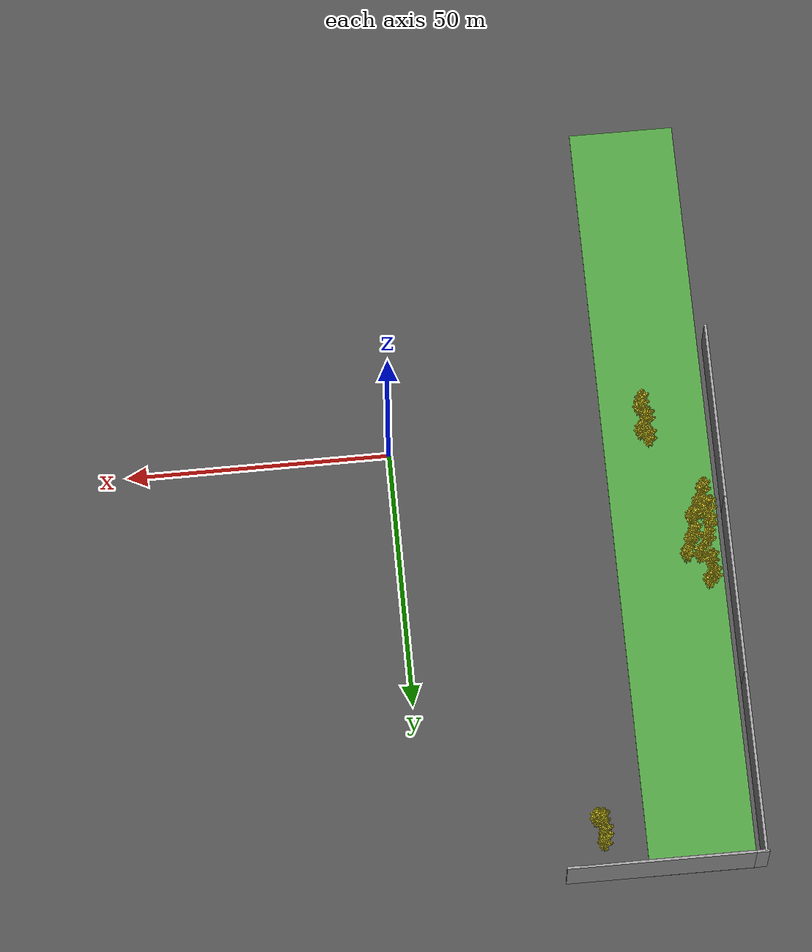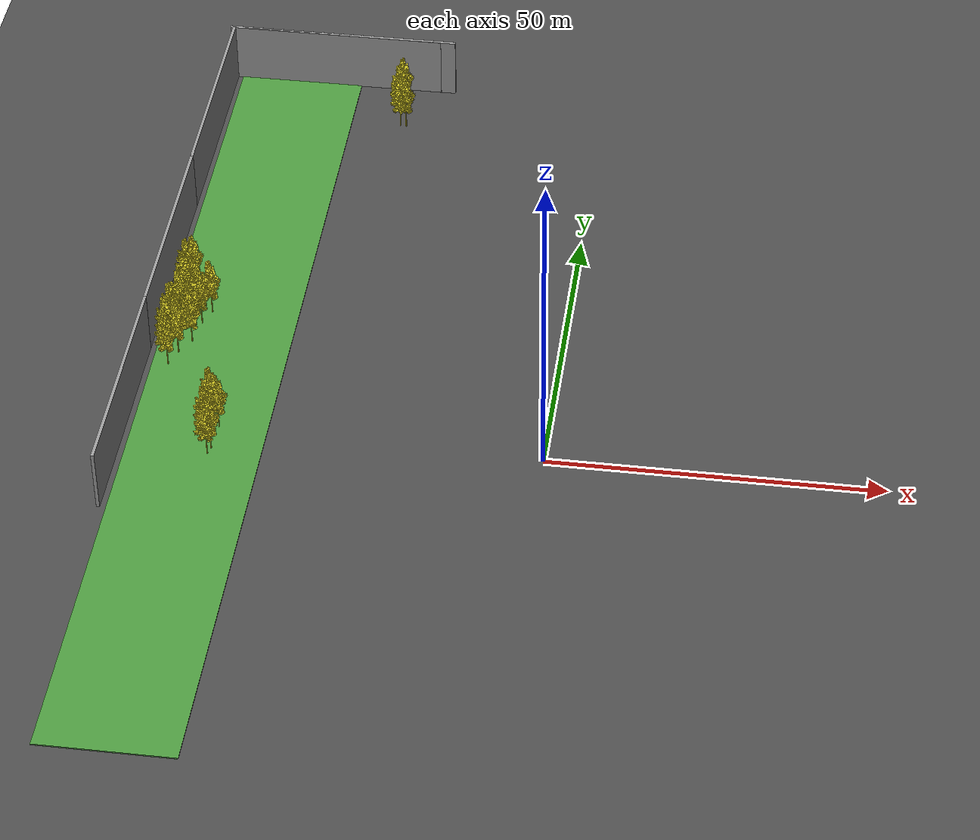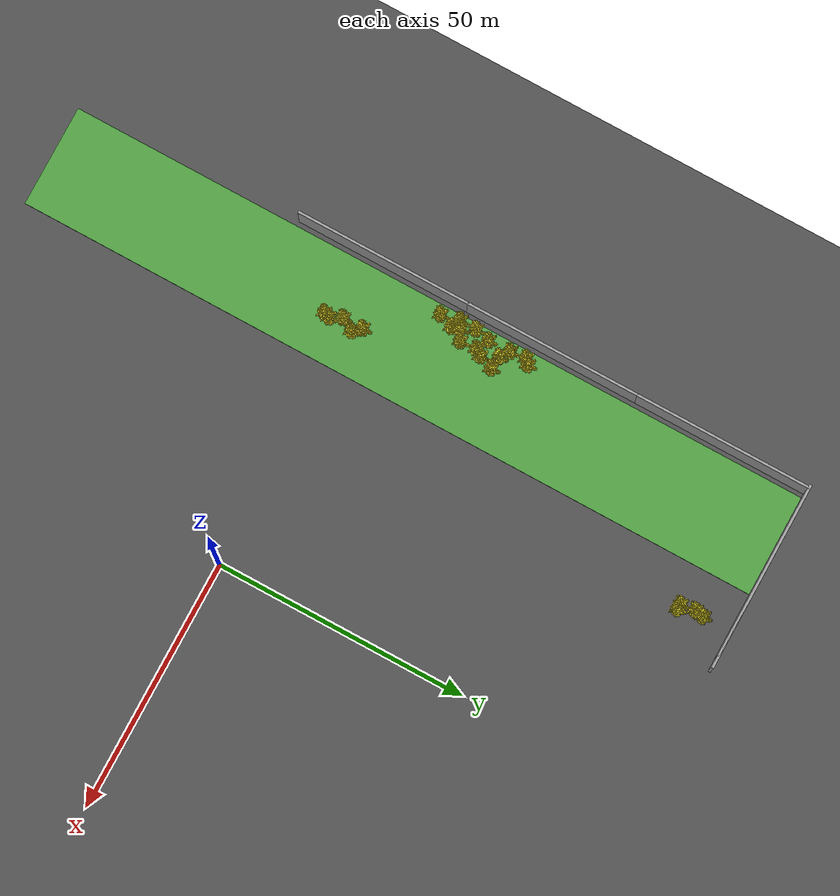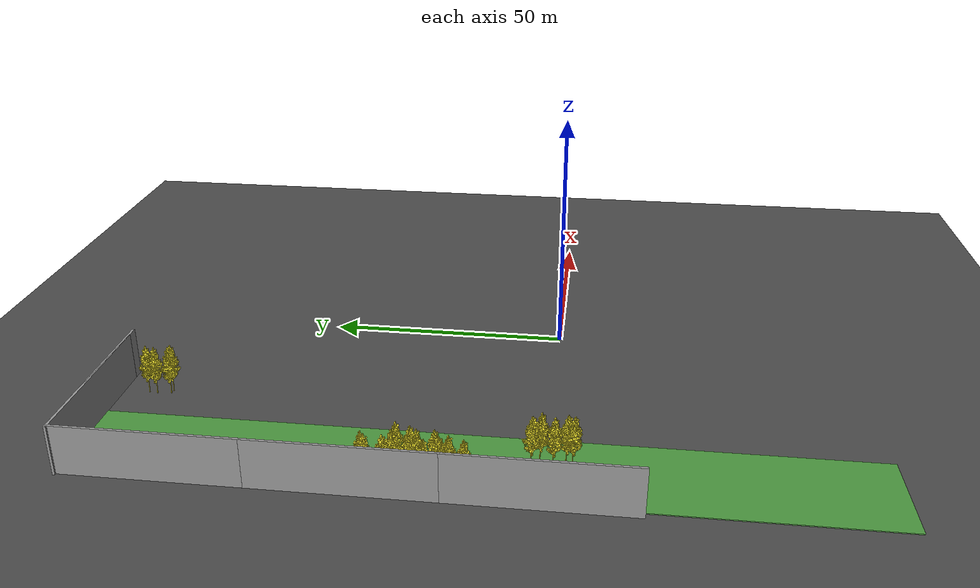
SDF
<sdf version="1.6">
 <world name="default">
  <model name="ground_plane">
   <static>1</static>
   <link name="link">
    <collision name="collision">
     <geometry><plane><normal>0 0 1</normal><size>40000 40000</size></plane></geometry>
     <surface>
      <contact><collide_bitmask>65535</collide_bitmask></contact>
      <friction><ode><mu>100</mu><mu2>50</mu2></ode></friction>
     </surface>
    </collision>
    <visual name="visual">
     <cast_shadows>0</cast_shadows>
     <geometry><plane><normal>0 0 1</normal><size>130 180</size></plane></geometry>
     <material>
      <script><uri>file://media/materials/scripts/gazebo.material</uri><name>Gazebo/Road</name></script>
     </material>
    </visual>
   </link>
  </model>
  <model name="wall1_clone_clone">
   <link name="link">
    <enable_wind>1</enable_wind>
    <inertial>
     <mass>1</mass>
     <inertia><ixx>1</ixx><ixy>0</ixy><ixz>0</ixz><iyy>1</iyy><iyz>0</iyz><izz>1</izz></inertia>
    </inertial>
    <visual name="visual">
     <cast_shadows>0</cast_shadows>
     <geometry><box><size>35 0.5 10</size></box></geometry>
     <material>
      <script>
       <uri>model://grey_wall/materials/scripts</uri>
       <uri>model://grey_wall/materials/textures</uri>
       <name>vrc/grey_wall</name>
      </script>
      <shader type="pixel"><normal_map>__default__</normal_map></shader>
      <ambient>1 1 1 1</ambient>
      <diffuse>1 1 1 1</diffuse>
      <specular>0 0 0 1</specular>
      <emissive>0 0 0 1</emissive>
     </material>
    </visual>
    <collision name="collision">
     <geometry><box><size>35 0.5 10</size></box></geometry>
     <surface>
      <friction>
       <ode><mu>1</mu><mu2>1</mu2><fdir1>0 0 0</fdir1><slip1>0</slip1><slip2>0</slip2></ode>
       <torsional>
        <coefficient>1</coefficient>
        <patch_radius>0</patch_radius>
        <surface_radius>0</surface_radius>
        <use_patch_radius>1</use_patch_radius>
        <ode><slip>0</slip></ode>
       </torsional>
      </friction>
      <bounce><restitution_coefficient>0</restitution_coefficient><threshold>1e+06</threshold></bounce>
      <contact>
       <collide_without_contact>0</collide_without_contact>
       <collide_without_contact_bitmask>1</collide_without_contact_bitmask>
       <collide_bitmask>1</collide_bitmask>
       <ode>
        <soft_cfm>0</soft_cfm>
        <soft_erp>0.2</soft_erp>
        <kp>1e+13</kp>
        <kd>1</kd>
        <max_vel>0.01</max_vel>
        <min_depth>0</min_depth>
       </ode>
       <bullet>
        <split_impulse>1</split_impulse>
        <split_impulse_penetration_threshold>-0.01</split_impulse_penetration_threshold>
        <soft_cfm>0</soft_cfm>
        <soft_erp>0.2</soft_erp>
        <kp>1e+13</kp>
        <kd>1</kd>
       </bullet>
      </contact>
     </surface>
    </collision>
   </link>
   <static>1</static>
   <pose>-45.0044 86.7474 5 0 -0 0</pose>
  </model>
  <model name="wall1_clone_clone_0">
   <link name="link">
    <enable_wind>1</enable_wind>
    <inertial>
     <mass>1</mass>
     <inertia><ixx>1</ixx><ixy>0</ixy><ixz>0</ixz><iyy>1</iyy><iyz>0</iyz><izz>1</izz></inertia>
    </inertial>
    <visual name="visual">
     <cast_shadows>0</cast_shadows>
     <geometry><box><size>35 0.5 10</size></box></geometry>
     <material>
      <script>
       <uri>model://grey_wall/materials/scripts</uri>
       <uri>model://grey_wall/materials/textures</uri>
       <name>vrc/grey_wall</name>
      </script>
      <shader type="pixel"><normal_map>__default__</normal_map></shader>
      <ambient>1 1 1 1</ambient>
      <diffuse>1 1 1 1</diffuse>
      <specular>0 0 0 1</specular>
      <emissive>0 0 0 1</emissive>
     </material>
    </visual>
    <collision name="collision">
     <geometry><box><size>35 0.5 10</size></box></geometry>
     <surface>
      <friction>
       <ode><mu>1</mu><mu2>1</mu2><fdir1>0 0 0</fdir1><slip1>0</slip1><slip2>0</slip2></ode>
       <torsional>
        <coefficient>1</coefficient>
        <patch_radius>0</patch_radius>
        <surface_radius>0</surface_radius>
        <use_patch_radius>1</use_patch_radius>
        <ode><slip>0</slip></ode>
       </torsional>
      </friction>
      <bounce><restitution_coefficient>0</restitution_coefficient><threshold>1e+06</threshold></bounce>
      <contact>
       <collide_without_contact>0</collide_without_contact>
       <collide_without_contact_bitmask>1</collide_without_contact_bitmask>
       <collide_bitmask>1</collide_bitmask>
       <ode>
        <soft_cfm>0</soft_cfm>
        <soft_erp>0.2</soft_erp>
        <kp>1e+13</kp>
        <kd>1</kd>
        <max_vel>0.01</max_vel>
        <min_depth>0</min_depth>
       </ode>
       <bullet>
        <split_impulse>1</split_impulse>
        <split_impulse_penetration_threshold>-0.01</split_impulse_penetration_threshold>
        <soft_cfm>0</soft_cfm>
        <soft_erp>0.2</soft_erp>
        <kp>1e+13</kp>
        <kd>1</kd>
       </bullet>
      </contact>
     </surface>
    </collision>
   </link>
   <static>1</static>
   <pose>-61.9101 69.2935 5 0 0 -1.57191</pose>
  </model>
  <model name="wall1_clone_clone_0_clone">
   <link name="link">
    <enable_wind>1</enable_wind>
    <inertial>
     <mass>1</mass>
     <inertia><ixx>1</ixx><ixy>0</ixy><ixz>0</ixz><iyy>1</iyy><iyz>0</iyz><izz>1</izz></inertia>
    </inertial>
    <visual name="visual">
     <cast_shadows>0</cast_shadows>
     <geometry><box><size>35 0.5 10</size></box></geometry>
     <material>
      <script>
       <uri>model://grey_wall/materials/scripts</uri>
       <uri>model://grey_wall/materials/textures</uri>
       <name>vrc/grey_wall</name>
      </script>
      <shader type="pixel"><normal_map>__default__</normal_map></shader>
      <ambient>1 1 1 1</ambient>
      <diffuse>1 1 1 1</diffuse>
      <specular>0 0 0 1</specular>
      <emissive>0 0 0 1</emissive>
     </material>
    </visual>
    <collision name="collision">
     <geometry><box><size>35 0.5 10</size></box></geometry>
     <surface>
      <friction>
       <ode><mu>1</mu><mu2>1</mu2><fdir1>0 0 0</fdir1><slip1>0</slip1><slip2>0</slip2></ode>
       <torsional>
        <coefficient>1</coefficient>
        <patch_radius>0</patch_radius>
        <surface_radius>0</surface_radius>
        <use_patch_radius>1</use_patch_radius>
        <ode><slip>0</slip></ode>
       </torsional>
      </friction>
      <bounce><restitution_coefficient>0</restitution_coefficient><threshold>1e+06</threshold></bounce>
      <contact>
       <collide_without_contact>0</collide_without_contact>
       <collide_without_contact_bitmask>1</collide_without_contact_bitmask>
       <collide_bitmask>1</collide_bitmask>
       <ode>
        <soft_cfm>0</soft_cfm>
        <soft_erp>0.2</soft_erp>
        <kp>1e+13</kp>
        <kd>1</kd>
        <max_vel>0.01</max_vel>
        <min_depth>0</min_depth>
       </ode>
       <bullet>
        <split_impulse>1</split_impulse>
        <split_impulse_penetration_threshold>-0.01</split_impulse_penetration_threshold>
        <soft_cfm>0</soft_cfm>
        <soft_erp>0.2</soft_erp>
        <kp>1e+13</kp>
        <kd>1</kd>
       </bullet>
      </contact>
     </surface>
    </collision>
   </link>
   <static>1</static>
   <pose>-61.9495 34.6526 5 0 0 -1.57191</pose>
  </model>
  <model name="wall1_clone_clone_0_clone_0">
   <link name="link">
    <enable_wind>1</enable_wind>
    <inertial>
     <mass>1</mass>
     <inertia><ixx>1</ixx><ixy>0</ixy><ixz>0</ixz><iyy>1</iyy><iyz>0</iyz><izz>1</izz></inertia>
    </inertial>
    <visual name="visual">
     <cast_shadows>0</cast_shadows>
     <geometry><box><size>35 0.5 10</size></box></geometry>
     <material>
      <script>
       <uri>model://grey_wall/materials/scripts</uri>
       <uri>model://grey_wall/materials/textures</uri>
       <name>vrc/grey_wall</name>
      </script>
      <shader type="pixel"><normal_map>__default__</normal_map></shader>
      <ambient>1 1 1 1</ambient>
      <diffuse>1 1 1 1</diffuse>
      <specular>0 0 0 1</specular>
      <emissive>0 0 0 1</emissive>
     </material>
    </visual>
    <collision name="collision">
     <geometry><box><size>35 0.5 10</size></box></geometry>
     <surface>
      <friction>
       <ode><mu>1</mu><mu2>1</mu2><fdir1>0 0 0</fdir1><slip1>0</slip1><slip2>0</slip2></ode>
       <torsional>
        <coefficient>1</coefficient>
        <patch_radius>0</patch_radius>
        <surface_radius>0</surface_radius>
        <use_patch_radius>1</use_patch_radius>
        <ode><slip>0</slip></ode>
       </torsional>
      </friction>
      <bounce><restitution_coefficient>0</restitution_coefficient><threshold>1e+06</threshold></bounce>
      <contact>
       <collide_without_contact>0</collide_without_contact>
       <collide_without_contact_bitmask>1</collide_without_contact_bitmask>
       <collide_bitmask>1</collide_bitmask>
       <ode>
        <soft_cfm>0</soft_cfm>
        <soft_erp>0.2</soft_erp>
        <kp>1e+13</kp>
        <kd>1</kd>
        <max_vel>0.01</max_vel>
        <min_depth>0</min_depth>
       </ode>
       <bullet>
        <split_impulse>1</split_impulse>
        <split_impulse_penetration_threshold>-0.01</split_impulse_penetration_threshold>
        <soft_cfm>0</soft_cfm>
        <soft_erp>0.2</soft_erp>
        <kp>1e+13</kp>
        <kd>1</kd>
       </bullet>
      </contact>
     </surface>
    </collision>
   </link>
   <static>1</static>
   <pose>-61.997 -0.05092 5 0 0 -1.57191</pose>
  </model>
  <model name="wall1_clone_clone_clone_3">
   <link name="link">
    <enable_wind>1</enable_wind>
    <inertial>
     <mass>1</mass>
     <inertia><ixx>1</ixx><ixy>0</ixy><ixz>0</ixz><iyy>1</iyy><iyz>0</iyz><izz>1</izz></inertia>
    </inertial>
    <visual name="visual">
     <cast_shadows>0</cast_shadows>
     <geometry><box><size>35 0.5 10</size></box></geometry>
     <material>
      <script>
       <uri>model://grey_wall/materials/scripts</uri>
       <uri>model://grey_wall/materials/textures</uri>
       <name>vrc/grey_wall</name>
      </script>
      <shader type="pixel"><normal_map>__default__</normal_map></shader>
      <ambient>1 1 1 1</ambient>
      <diffuse>1 1 1 1</diffuse>
      <specular>0 0 0 1</specular>
      <emissive>0 0 0 1</emissive>
     </material>
    </visual>
    <collision name="collision">
     <geometry><box><size>35 0.5 10</size></box></geometry>
     <surface>
      <friction>
       <ode><mu>1</mu><mu2>1</mu2><fdir1>0 0 0</fdir1><slip1>0</slip1><slip2>0</slip2></ode>
       <torsional>
        <coefficient>1</coefficient>
        <patch_radius>0</patch_radius>
        <surface_radius>0</surface_radius>
        <use_patch_radius>1</use_patch_radius>
        <ode><slip>0</slip></ode>
       </torsional>
      </friction>
      <bounce><restitution_coefficient>0</restitution_coefficient><threshold>1e+06</threshold></bounce>
      <contact>
       <collide_without_contact>0</collide_without_contact>
       <collide_without_contact_bitmask>1</collide_without_contact_bitmask>
       <collide_bitmask>1</collide_bitmask>
       <ode>
        <soft_cfm>0</soft_cfm>
        <soft_erp>0.2</soft_erp>
        <kp>1e+13</kp>
        <kd>1</kd>
        <max_vel>0.01</max_vel>
        <min_depth>0</min_depth>
       </ode>
       <bullet>
        <split_impulse>1</split_impulse>
        <split_impulse_penetration_threshold>-0.01</split_impulse_penetration_threshold>
        <soft_cfm>0</soft_cfm>
        <soft_erp>0.2</soft_erp>
        <kp>1e+13</kp>
        <kd>1</kd>
       </bullet>
      </contact>
     </surface>
    </collision>
   </link>
   <static>1</static>
   <pose>-42.6219 86.7691 5 0 -0 0</pose>
  </model>
  <model name="tree0_clone_clone_clone_20">
   <link name="tree_base">
    <inertial>
     <mass>50</mass>
     <inertia>
      <ixx>6.71748</ixx>
      <ixy>2.148e-05</ixy>
      <ixz>-2.4e-07</ixz>
      <iyy>6.71748</iyy>
      <iyz>-0.171807</iyz>
      <izz>6.71748</izz>
     </inertia>
    </inertial>
    <collision name="tree_base_fixed_joint_lump__collision_collision">
     <geometry>
      <mesh>
       <scale>0.4 0.4 0.6</scale>
       <uri>/home/ana/catkin_ws/src/frontier_exploration_3d/models/tree/meshes/tree_25k_mesh.dae</uri>
      </mesh>
     </geometry>
    </collision>
    <visual name="tree_base_visual">
     <geometry>
      <mesh>
       <scale>0.4 0.4 0.6</scale>
       <uri>/home/ana/catkin_ws/src/frontier_exploration_3d/models/tree/meshes/tree_25k_mesh.dae</uri>
      </mesh>
     </geometry>
     <material>
      <script><name>Gazebo/Yellow</name><uri>file://media/materials/scripts/gazebo.material</uri></script>
     </material>
    </visual>
   </link>
   <joint name="joint_tree_base" type="fixed"><child>tree_base</child><parent>world</parent></joint>
   <static>1</static>
   <pose>-48.3187 0.150143 0 0 -0 0</pose>
  </model>
  <model name="tree0_clone_clone_clone_23">
   <link name="tree_base">
    <inertial>
     <mass>50</mass>
     <inertia>
      <ixx>6.71748</ixx>
      <ixy>2.148e-05</ixy>
      <ixz>-2.4e-07</ixz>
      <iyy>6.71748</iyy>
      <iyz>-0.171807</iyz>
      <izz>6.71748</izz>
     </inertia>
    </inertial>
    <collision name="tree_base_fixed_joint_lump__collision_collision">
     <geometry>
      <mesh>
       <scale>0.4 0.4 0.6</scale>
       <uri>/home/ana/catkin_ws/src/frontier_exploration_3d/models/tree/meshes/tree_25k_mesh.dae</uri>
      </mesh>
     </geometry>
    </collision>
    <visual name="tree_base_visual">
     <geometry>
      <mesh>
       <scale>0.4 0.4 0.6</scale>
       <uri>/home/ana/catkin_ws/src/frontier_exploration_3d/models/tree/meshes/tree_25k_mesh.dae</uri>
      </mesh>
     </geometry>
     <material>
      <script><name>Gazebo/Yellow</name><uri>file://media/materials/scripts/gazebo.material</uri></script>
     </material>
    </visual>
   </link>
   <joint name="joint_tree_base" type="fixed"><child>tree_base</child><parent>world</parent></joint>
   <static>1</static>
   <pose>-33.1641 83.2221 0 0 -0 0</pose>
  </model>
  <model name="tree0_clone_clone_clone_1_clone_4_clone_5">
   <link name="tree_base">
    <inertial>
     <mass>50</mass>
     <inertia>
      <ixx>6.71748</ixx>
      <ixy>2.148e-05</ixy>
      <ixz>-2.4e-07</ixz>
      <iyy>6.71748</iyy>
      <iyz>-0.171807</iyz>
      <izz>6.71748</izz>
     </inertia>
    </inertial>
    <collision name="tree_base_fixed_joint_lump__collision_collision">
     <geometry>
      <mesh>
       <scale>0.4 0.4 0.6</scale>
       <uri>/home/ana/catkin_ws/src/frontier_exploration_3d/models/tree/meshes/tree_25k_mesh.dae</uri>
      </mesh>
     </geometry>
    </collision>
    <visual name="tree_base_visual">
     <geometry>
      <mesh>
       <scale>0.4 0.4 0.6</scale>
       <uri>/home/ana/catkin_ws/src/frontier_exploration_3d/models/tree/meshes/tree_25k_mesh.dae</uri>
      </mesh>
     </geometry>
     <material>
      <script><name>Gazebo/Yellow</name><uri>file://media/materials/scripts/gazebo.material</uri></script>
     </material>
    </visual>
   </link>
   <joint name="joint_tree_base" type="fixed"><child>tree_base</child><parent>world</parent></joint>
   <static>1</static>
   <pose>-58.3793 17.5772 0 0 -0 0</pose>
  </model>
  <model name="tree0_clone_clone_clone_1_clone_4_clone_6">
   <link name="tree_base">
    <inertial>
     <mass>50</mass>
     <inertia>
      <ixx>6.71748</ixx>
      <ixy>2.148e-05</ixy>
      <ixz>-2.4e-07</ixz>
      <iyy>6.71748</iyy>
      <iyz>-0.171807</iyz>
      <izz>6.71748</izz>
     </inertia>
    </inertial>
    <collision name="tree_base_fixed_joint_lump__collision_collision">
     <geometry>
      <mesh>
       <scale>0.4 0.4 0.6</scale>
       <uri>/home/ana/catkin_ws/src/frontier_exploration_3d/models/tree/meshes/tree_25k_mesh.dae</uri>
      </mesh>
     </geometry>
    </collision>
    <visual name="tree_base_visual">
     <geometry>
      <mesh>
       <scale>0.4 0.4 0.6</scale>
       <uri>/home/ana/catkin_ws/src/frontier_exploration_3d/models/tree/meshes/tree_25k_mesh.dae</uri>
      </mesh>
     </geometry>
     <material>
      <script><name>Gazebo/Yellow</name><uri>file://media/materials/scripts/gazebo.material</uri></script>
     </material>
    </visual>
   </link>
   <joint name="joint_tree_base" type="fixed"><child>tree_base</child><parent>world</parent></joint>
   <static>1</static>
   <pose>-58.319 27.4563 0 0 -0 0</pose>
  </model>
  <model name="tree0_clone_clone_clone_1_clone_4_clone_7">
   <link name="tree_base">
    <inertial>
     <mass>50</mass>
     <inertia>
      <ixx>6.71748</ixx>
      <ixy>2.148e-05</ixy>
      <ixz>-2.4e-07</ixz>
      <iyy>6.71748</iyy>
      <iyz>-0.171807</iyz>
      <izz>6.71748</izz>
     </inertia>
    </inertial>
    <collision name="tree_base_fixed_joint_lump__collision_collision">
     <geometry>
      <mesh>
       <scale>0.4 0.4 0.6</scale>
       <uri>/home/ana/catkin_ws/src/frontier_exploration_3d/models/tree/meshes/tree_25k_mesh.dae</uri>
      </mesh>
     </geometry>
    </collision>
    <visual name="tree_base_visual">
     <geometry>
      <mesh>
       <scale>0.4 0.4 0.6</scale>
       <uri>/home/ana/catkin_ws/src/frontier_exploration_3d/models/tree/meshes/tree_25k_mesh.dae</uri>
      </mesh>
     </geometry>
     <material>
      <script><name>Gazebo/Yellow</name><uri>file://media/materials/scripts/gazebo.material</uri></script>
     </material>
    </visual>
   </link>
   <joint name="joint_tree_base" type="fixed"><child>tree_base</child><parent>world</parent></joint>
   <static>1</static>
   <pose>-55.7814 23.0274 0 0 -0 0</pose>
  </model>
  <model name="tree0_clone_clone_clone_1_clone_4_clone_8">
   <link name="tree_base">
    <inertial>
     <mass>50</mass>
     <inertia>
      <ixx>6.71748</ixx>
      <ixy>2.148e-05</ixy>
      <ixz>-2.4e-07</ixz>
      <iyy>6.71748</iyy>
      <iyz>-0.171807</iyz>
      <izz>6.71748</izz>
     </inertia>
    </inertial>
    <collision name="tree_base_fixed_joint_lump__collision_collision">
     <geometry>
      <mesh>
       <scale>0.4 0.4 0.6</scale>
       <uri>/home/ana/catkin_ws/src/frontier_exploration_3d/models/tree/meshes/tree_25k_mesh.dae</uri>
      </mesh>
     </geometry>
    </collision>
    <visual name="tree_base_visual">
     <geometry>
      <mesh>
       <scale>0.4 0.4 0.6</scale>
       <uri>/home/ana/catkin_ws/src/frontier_exploration_3d/models/tree/meshes/tree_25k_mesh.dae</uri>
      </mesh>
     </geometry>
     <material>
      <script><name>Gazebo/Yellow</name><uri>file://media/materials/scripts/gazebo.material</uri></script>
     </material>
    </visual>
   </link>
   <joint name="joint_tree_base" type="fixed"><child>tree_base</child><parent>world</parent></joint>
   <static>1</static>
   <pose>-54.1283 30.2584 0 0 -0 0</pose>
  </model>
  <model name="tree0_clone_clone_clone_1_clone_4_clone_9">
   <link name="tree_base">
    <inertial>
     <mass>50</mass>
     <inertia>
      <ixx>6.71748</ixx>
      <ixy>2.148e-05</ixy>
      <ixz>-2.4e-07</ixz>
      <iyy>6.71748</iyy>
      <iyz>-0.171807</iyz>
      <izz>6.71748</izz>
     </inertia>
    </inertial>
    <collision name="tree_base_fixed_joint_lump__collision_collision">
     <geometry>
      <mesh>
       <scale>0.4 0.4 0.6</scale>
       <uri>/home/ana/catkin_ws/src/frontier_exploration_3d/models/tree/meshes/tree_25k_mesh.dae</uri>
      </mesh>
     </geometry>
    </collision>
    <visual name="tree_base_visual">
     <geometry>
      <mesh>
       <scale>0.4 0.4 0.6</scale>
       <uri>/home/ana/catkin_ws/src/frontier_exploration_3d/models/tree/meshes/tree_25k_mesh.dae</uri>
      </mesh>
     </geometry>
     <material>
      <script><name>Gazebo/Yellow</name><uri>file://media/materials/scripts/gazebo.material</uri></script>
     </material>
    </visual>
   </link>
   <joint name="joint_tree_base" type="fixed"><child>tree_base</child><parent>world</parent></joint>
   <static>1</static>
   <pose>-57.8567 35.7583 0 0 -0 0</pose>
  </model>
  <model name="grass_plane_clone_0">
   <link name="link">
    <inertial>
     <mass>1</mass>
     <inertia><ixx>1</ixx><ixy>0</ixy><ixz>0</ixz><iyy>1</iyy><iyz>0</iyz><izz>1</izz></inertia>
    </inertial>
    <visual name="visual">
     <cast_shadows>0</cast_shadows>
     <geometry><box><size>20 150 0.2</size></box></geometry>
     <material>
      <script><uri>file://media/materials/scripts/gazebo.material</uri><name>Gazebo/Grass</name></script>
      <shader type="pixel"><normal_map>__default__</normal_map></shader>
      <ambient>0.5 0.5 0.5 1</ambient>
      <diffuse>1 1 1 1</diffuse>
      <specular>0 0 0 1</specular>
      <emissive>0 0 0 1</emissive>
     </material>
    </visual>
    <collision name="collision">
     <geometry><box><size>20 150 0.2</size></box></geometry>
     <surface>
      <friction>
       <ode><mu>1</mu><mu2>1</mu2><fdir1>0 0 0</fdir1><slip1>0</slip1><slip2>0</slip2></ode>
       <torsional>
        <coefficient>1</coefficient>
        <patch_radius>0</patch_radius>
        <surface_radius>0</surface_radius>
        <use_patch_radius>1</use_patch_radius>
        <ode><slip>0</slip></ode>
       </torsional>
      </friction>
      <bounce><restitution_coefficient>0</restitution_coefficient><threshold>1e+06</threshold></bounce>
      <contact>
       <collide_without_contact>0</collide_without_contact>
       <collide_without_contact_bitmask>1</collide_without_contact_bitmask>
       <collide_bitmask>1</collide_bitmask>
       <ode>
        <soft_cfm>0</soft_cfm>
        <soft_erp>0.2</soft_erp>
        <kp>1e+13</kp>
        <kd>1</kd>
        <max_vel>0.01</max_vel>
        <min_depth>0</min_depth>
       </ode>
       <bullet>
        <split_impulse>1</split_impulse>
        <split_impulse_penetration_threshold>-0.01</split_impulse_penetration_threshold>
        <soft_cfm>0</soft_cfm>
        <soft_erp>0.2</soft_erp>
        <kp>1e+13</kp>
        <kd>1</kd>
       </bullet>
      </contact>
     </surface>
    </collision>
   </link>
   <static>1</static>
   <pose>-50.8678 12.0136 0 0 -0 0</pose>
  </model>
  <model name="tree0_clone_clone_clone_0_clone_clone">
   <link name="tree_base">
    <inertial>
     <mass>50</mass>
     <inertia>
      <ixx>6.71748</ixx>
      <ixy>2.148e-05</ixy>
      <ixz>-2.4e-07</ixz>
      <iyy>6.71748</iyy>
      <iyz>-0.171807</iyz>
      <izz>6.71748</izz>
     </inertia>
    </inertial>
    <collision name="tree_base_fixed_joint_lump__collision_collision">
     <geometry>
      <mesh>
       <scale>0.4 0.4 0.6</scale>
       <uri>/home/ana/catkin_ws/src/frontier_exploration_3d/models/tree/meshes/tree_25k_mesh.dae</uri>
      </mesh>
     </geometry>
    </collision>
    <visual name="tree_base_visual">
     <geometry>
      <mesh>
       <scale>0.4 0.4 0.6</scale>
       <uri>/home/ana/catkin_ws/src/frontier_exploration_3d/models/tree/meshes/tree_25k_mesh.dae</uri>
      </mesh>
     </geometry>
     <material>
      <script><name>Gazebo/Yellow</name><uri>file://media/materials/scripts/gazebo.material</uri></script>
     </material>
    </visual>
   </link>
   <joint name="joint_tree_base" type="fixed"><child>tree_base</child><parent>world</parent></joint>
   <static>1</static>
   <pose>-49.3974 6.45253 0 0 -0 0</pose>
  </model>
  <model name="tree0_clone_clone_clone_0_clone_clone_0">
   <link name="tree_base">
    <inertial>
     <mass>50</mass>
     <inertia>
      <ixx>6.71748</ixx>
      <ixy>2.148e-05</ixy>
      <ixz>-2.4e-07</ixz>
      <iyy>6.71748</iyy>
      <iyz>-0.171807</iyz>
      <izz>6.71748</izz>
     </inertia>
    </inertial>
    <collision name="tree_base_fixed_joint_lump__collision_collision">
     <geometry>
      <mesh>
       <scale>0.4 0.4 0.6</scale>
       <uri>/home/ana/catkin_ws/src/frontier_exploration_3d/models/tree/meshes/tree_25k_mesh.dae</uri>
      </mesh>
     </geometry>
    </collision>
    <visual name="tree_base_visual">
     <geometry>
      <mesh>
       <scale>0.4 0.4 0.6</scale>
       <uri>/home/ana/catkin_ws/src/frontier_exploration_3d/models/tree/meshes/tree_25k_mesh.dae</uri>
      </mesh>
     </geometry>
     <material>
      <script><name>Gazebo/Yellow</name><uri>file://media/materials/scripts/gazebo.material</uri></script>
     </material>
    </visual>
   </link>
   <joint name="joint_tree_base" type="fixed"><child>tree_base</child><parent>world</parent></joint>
   <static>1</static>
   <pose>-49.4179 2.45019 0 0 -0 0</pose>
  </model>
  <model name="tree0_clone_clone_clone_0_clone_clone_1">
   <link name="tree_base">
    <inertial>
     <mass>50</mass>
     <inertia>
      <ixx>6.71748</ixx>
      <ixy>2.148e-05</ixy>
      <ixz>-2.4e-07</ixz>
      <iyy>6.71748</iyy>
      <iyz>-0.171807</iyz>
      <izz>6.71748</izz>
     </inertia>
    </inertial>
    <collision name="tree_base_fixed_joint_lump__collision_collision">
     <geometry>
      <mesh>
       <scale>0.4 0.4 0.6</scale>
       <uri>/home/ana/catkin_ws/src/frontier_exploration_3d/models/tree/meshes/tree_25k_mesh.dae</uri>
      </mesh>
     </geometry>
    </collision>
    <visual name="tree_base_visual">
     <geometry>
      <mesh>
       <scale>0.4 0.4 0.6</scale>
       <uri>/home/ana/catkin_ws/src/frontier_exploration_3d/models/tree/meshes/tree_25k_mesh.dae</uri>
      </mesh>
     </geometry>
     <material>
      <script><name>Gazebo/Yellow</name><uri>file://media/materials/scripts/gazebo.material</uri></script>
     </material>
    </visual>
   </link>
   <joint name="joint_tree_base" type="fixed"><child>tree_base</child><parent>world</parent></joint>
   <static>1</static>
   <pose>-48.666 -1.01178 0 0 -0 0</pose>
  </model>
  <model name="tree0_clone_clone_clone_1_clone_4_clone_3_clone_13">
   <link name="tree_base">
    <inertial>
     <mass>50</mass>
     <inertia>
      <ixx>6.71748</ixx>
      <ixy>2.148e-05</ixy>
      <ixz>-2.4e-07</ixz>
      <iyy>6.71748</iyy>
      <iyz>-0.171807</iyz>
      <izz>6.71748</izz>
     </inertia>
    </inertial>
    <collision name="tree_base_fixed_joint_lump__collision_collision">
     <geometry>
      <mesh>
       <scale>0.4 0.4 0.6</scale>
       <uri>/home/ana/catkin_ws/src/frontier_exploration_3d/models/tree/meshes/tree_25k_mesh.dae</uri>
      </mesh>
     </geometry>
    </collision>
    <visual name="tree_base_visual">
     <geometry>
      <mesh>
       <scale>0.4 0.4 0.6</scale>
       <uri>/home/ana/catkin_ws/src/frontier_exploration_3d/models/tree/meshes/tree_25k_mesh.dae</uri>
      </mesh>
     </geometry>
     <material>
      <script><name>Gazebo/Yellow</name><uri>file://media/materials/scripts/gazebo.material</uri></script>
     </material>
    </visual>
   </link>
   <joint name="joint_tree_base" type="fixed"><child>tree_base</child><parent>world</parent></joint>
   <static>1</static>
   <pose>-59.1353 21.2307 0 0 -0 0</pose>
  </model>
  <model name="tree0_clone_clone_clone_1_clone_4_clone_3_clone_14">
   <link name="tree_base">
    <inertial>
     <mass>50</mass>
     <inertia>
      <ixx>6.71748</ixx>
      <ixy>2.148e-05</ixy>
      <ixz>-2.4e-07</ixz>
      <iyy>6.71748</iyy>
      <iyz>-0.171807</iyz>
      <izz>6.71748</izz>
     </inertia>
    </inertial>
    <collision name="tree_base_fixed_joint_lump__collision_collision">
     <geometry>
      <mesh>
       <scale>0.4 0.4 0.6</scale>
       <uri>/home/ana/catkin_ws/src/frontier_exploration_3d/models/tree/meshes/tree_25k_mesh.dae</uri>
      </mesh>
     </geometry>
    </collision>
    <visual name="tree_base_visual">
     <geometry>
      <mesh>
       <scale>0.4 0.4 0.6</scale>
       <uri>/home/ana/catkin_ws/src/frontier_exploration_3d/models/tree/meshes/tree_25k_mesh.dae</uri>
      </mesh>
     </geometry>
     <material>
      <script><name>Gazebo/Yellow</name><uri>file://media/materials/scripts/gazebo.material</uri></script>
     </material>
    </visual>
   </link>
   <joint name="joint_tree_base" type="fixed"><child>tree_base</child><parent>world</parent></joint>
   <static>1</static>
   <pose>-59.0241 24.5086 0 0 -0 0</pose>
  </model>
  <model name="tree0_clone_clone_clone_1_clone_4_clone_3_clone_15">
   <link name="tree_base">
    <inertial>
     <mass>50</mass>
     <inertia>
      <ixx>6.71748</ixx>
      <ixy>2.148e-05</ixy>
      <ixz>-2.4e-07</ixz>
      <iyy>6.71748</iyy>
      <iyz>-0.171807</iyz>
      <izz>6.71748</izz>
     </inertia>
    </inertial>
    <collision name="tree_base_fixed_joint_lump__collision_collision">
     <geometry>
      <mesh>
       <scale>0.4 0.4 0.6</scale>
       <uri>/home/ana/catkin_ws/src/frontier_exploration_3d/models/tree/meshes/tree_25k_mesh.dae</uri>
      </mesh>
     </geometry>
    </collision>
    <visual name="tree_base_visual">
     <geometry>
      <mesh>
       <scale>0.4 0.4 0.6</scale>
       <uri>/home/ana/catkin_ws/src/frontier_exploration_3d/models/tree/meshes/tree_25k_mesh.dae</uri>
      </mesh>
     </geometry>
     <material>
      <script><name>Gazebo/Yellow</name><uri>file://media/materials/scripts/gazebo.material</uri></script>
     </material>
    </visual>
   </link>
   <joint name="joint_tree_base" type="fixed"><child>tree_base</child><parent>world</parent></joint>
   <static>1</static>
   <pose>-57.7924 21.9839 0 0 -0 0</pose>
  </model>
  <model name="tree0_clone_clone_clone_1_clone_4_clone_3_clone_16">
   <link name="tree_base">
    <inertial>
     <mass>50</mass>
     <inertia>
      <ixx>6.71748</ixx>
      <ixy>2.148e-05</ixy>
      <ixz>-2.4e-07</ixz>
      <iyy>6.71748</iyy>
      <iyz>-0.171807</iyz>
      <izz>6.71748</izz>
     </inertia>
    </inertial>
    <collision name="tree_base_fixed_joint_lump__collision_collision">
     <geometry>
      <mesh>
       <scale>0.4 0.4 0.6</scale>
       <uri>/home/ana/catkin_ws/src/frontier_exploration_3d/models/tree/meshes/tree_25k_mesh.dae</uri>
      </mesh>
     </geometry>
    </collision>
    <visual name="tree_base_visual">
     <geometry>
      <mesh>
       <scale>0.4 0.4 0.6</scale>
       <uri>/home/ana/catkin_ws/src/frontier_exploration_3d/models/tree/meshes/tree_25k_mesh.dae</uri>
      </mesh>
     </geometry>
     <material>
      <script><name>Gazebo/Yellow</name><uri>file://media/materials/scripts/gazebo.material</uri></script>
     </material>
    </visual>
   </link>
   <joint name="joint_tree_base" type="fixed"><child>tree_base</child><parent>world</parent></joint>
   <static>1</static>
   <pose>-55.9275 26.253 0 0 -0 0</pose>
  </model>
  <model name="tree0_clone_clone_clone_1_clone_4_clone_3_clone_17">
   <link name="tree_base">
    <inertial>
     <mass>50</mass>
     <inertia>
      <ixx>6.71748</ixx>
      <ixy>2.148e-05</ixy>
      <ixz>-2.4e-07</ixz>
      <iyy>6.71748</iyy>
      <iyz>-0.171807</iyz>
      <izz>6.71748</izz>
     </inertia>
    </inertial>
    <collision name="tree_base_fixed_joint_lump__collision_collision">
     <geometry>
      <mesh>
       <scale>0.4 0.4 0.6</scale>
       <uri>/home/ana/catkin_ws/src/frontier_exploration_3d/models/tree/meshes/tree_25k_mesh.dae</uri>
      </mesh>
     </geometry>
    </collision>
    <visual name="tree_base_visual">
     <geometry>
      <mesh>
       <scale>0.4 0.4 0.6</scale>
       <uri>/home/ana/catkin_ws/src/frontier_exploration_3d/models/tree/meshes/tree_25k_mesh.dae</uri>
      </mesh>
     </geometry>
     <material>
      <script><name>Gazebo/Yellow</name><uri>file://media/materials/scripts/gazebo.material</uri></script>
     </material>
    </visual>
   </link>
   <joint name="joint_tree_base" type="fixed"><child>tree_base</child><parent>world</parent></joint>
   <static>1</static>
   <pose>-58.4475 31.841 0 0 -0 0</pose>
  </model>
  <model name="tree0_clone_clone_clone_1_clone_4_clone_3_clone_19">
   <link name="tree_base">
    <inertial>
     <mass>50</mass>
     <inertia>
      <ixx>6.71748</ixx>
      <ixy>2.148e-05</ixy>
      <ixz>-2.4e-07</ixz>
      <iyy>6.71748</iyy>
      <iyz>-0.171807</iyz>
      <izz>6.71748</izz>
     </inertia>
    </inertial>
    <collision name="tree_base_fixed_joint_lump__collision_collision">
     <geometry>
      <mesh>
       <scale>0.4 0.4 0.6</scale>
       <uri>/home/ana/catkin_ws/src/frontier_exploration_3d/models/tree/meshes/tree_25k_mesh.dae</uri>
      </mesh>
     </geometry>
    </collision>
    <visual name="tree_base_visual">
     <geometry>
      <mesh>
       <scale>0.4 0.4 0.6</scale>
       <uri>/home/ana/catkin_ws/src/frontier_exploration_3d/models/tree/meshes/tree_25k_mesh.dae</uri>
      </mesh>
     </geometry>
     <material>
      <script><name>Gazebo/Yellow</name><uri>file://media/materials/scripts/gazebo.material</uri></script>
     </material>
    </visual>
   </link>
   <joint name="joint_tree_base" type="fixed"><child>tree_base</child><parent>world</parent></joint>
   <static>1</static>
   <pose>-58.7026 34.9508 0 0 -0 0</pose>
  </model>
  <model name="tree0_clone_clone_clone_1_clone_4_clone_3_clone_20">
   <link name="tree_base">
    <inertial>
     <mass>50</mass>
     <inertia>
      <ixx>6.71748</ixx>
      <ixy>2.148e-05</ixy>
      <ixz>-2.4e-07</ixz>
      <iyy>6.71748</iyy>
      <iyz>-0.171807</iyz>
      <izz>6.71748</izz>
     </inertia>
    </inertial>
    <collision name="tree_base_fixed_joint_lump__collision_collision">
     <geometry>
      <mesh>
       <scale>0.4 0.4 0.6</scale>
       <uri>/home/ana/catkin_ws/src/frontier_exploration_3d/models/tree/meshes/tree_25k_mesh.dae</uri>
      </mesh>
     </geometry>
    </collision>
    <visual name="tree_base_visual">
     <geometry>
      <mesh>
       <scale>0.4 0.4 0.6</scale>
       <uri>/home/ana/catkin_ws/src/frontier_exploration_3d/models/tree/meshes/tree_25k_mesh.dae</uri>
      </mesh>
     </geometry>
     <material>
      <script><name>Gazebo/Yellow</name><uri>file://media/materials/scripts/gazebo.material</uri></script>
     </material>
    </visual>
   </link>
   <joint name="joint_tree_base" type="fixed"><child>tree_base</child><parent>world</parent></joint>
   <static>1</static>
   <pose>-56.6278 30.5451 0 0 -0 0</pose>
  </model>
  <model name="tree0_clone_clone_clone_1_clone_4_clone_3_clone_21">
   <link name="tree_base">
    <inertial>
     <mass>50</mass>
     <inertia>
      <ixx>6.71748</ixx>
      <ixy>2.148e-05</ixy>
      <ixz>-2.4e-07</ixz>
      <iyy>6.71748</iyy>
      <iyz>-0.171807</iyz>
      <izz>6.71748</izz>
     </inertia>
    </inertial>
    <collision name="tree_base_fixed_joint_lump__collision_collision">
     <geometry>
      <mesh>
       <scale>0.4 0.4 0.6</scale>
       <uri>/home/ana/catkin_ws/src/frontier_exploration_3d/models/tree/meshes/tree_25k_mesh.dae</uri>
      </mesh>
     </geometry>
    </collision>
    <visual name="tree_base_visual">
     <geometry>
      <mesh>
       <scale>0.4 0.4 0.6</scale>
       <uri>/home/ana/catkin_ws/src/frontier_exploration_3d/models/tree/meshes/tree_25k_mesh.dae</uri>
      </mesh>
     </geometry>
     <material>
      <script><name>Gazebo/Yellow</name><uri>file://media/materials/scripts/gazebo.material</uri></script>
     </material>
    </visual>
   </link>
   <joint name="joint_tree_base" type="fixed"><child>tree_base</child><parent>world</parent></joint>
   <static>1</static>
   <pose>-55.1588 27.5072 0 0 -0 0</pose>
  </model>
  <model name="tree0_clone_clone_clone_1_clone_4_clone_3_clone_22">
   <link name="tree_base">
    <inertial>
     <mass>50</mass>
     <inertia>
      <ixx>6.71748</ixx>
      <ixy>2.148e-05</ixy>
      <ixz>-2.4e-07</ixz>
      <iyy>6.71748</iyy>
      <iyz>-0.171807</iyz>
      <izz>6.71748</izz>
     </inertia>
    </inertial>
    <collision name="tree_base_fixed_joint_lump__collision_collision">
     <geometry>
      <mesh>
       <scale>0.4 0.4 0.6</scale>
       <uri>/home/ana/catkin_ws/src/frontier_exploration_3d/models/tree/meshes/tree_25k_mesh.dae</uri>
      </mesh>
     </geometry>
    </collision>
    <visual name="tree_base_visual">
     <geometry>
      <mesh>
       <scale>0.4 0.4 0.6</scale>
       <uri>/home/ana/catkin_ws/src/frontier_exploration_3d/models/tree/meshes/tree_25k_mesh.dae</uri>
      </mesh>
     </geometry>
     <material>
      <script><name>Gazebo/Yellow</name><uri>file://media/materials/scripts/gazebo.material</uri></script>
     </material>
    </visual>
   </link>
   <joint name="joint_tree_base" type="fixed"><child>tree_base</child><parent>world</parent></joint>
   <static>1</static>
   <pose>-57.3417 20.3724 0 0 -0 0</pose>
  </model>
  <model name="tree0_clone_clone_clone_23_clone">
   <link name="tree_base">
    <inertial>
     <mass>50</mass>
     <inertia>
      <ixx>6.71748</ixx>
      <ixy>2.148e-05</ixy>
      <ixz>-2.4e-07</ixz>
      <iyy>6.71748</iyy>
      <iyz>-0.171807</iyz>
      <izz>6.71748</izz>
     </inertia>
    </inertial>
    <collision name="tree_base_fixed_joint_lump__collision_collision">
     <geometry>
      <mesh>
       <scale>0.4 0.4 0.6</scale>
       <uri>/home/ana/catkin_ws/src/frontier_exploration_3d/models/tree/meshes/tree_25k_mesh.dae</uri>
      </mesh>
     </geometry>
    </collision>
    <visual name="tree_base_visual">
     <geometry>
      <mesh>
       <scale>0.4 0.4 0.6</scale>
       <uri>/home/ana/catkin_ws/src/frontier_exploration_3d/models/tree/meshes/tree_25k_mesh.dae</uri>
      </mesh>
     </geometry>
     <material>
      <script><name>Gazebo/Yellow</name><uri>file://media/materials/scripts/gazebo.material</uri></script>
     </material>
    </visual>
   </link>
   <joint name="joint_tree_base" type="fixed"><child>tree_base</child><parent>world</parent></joint>
   <static>1</static>
   <pose>-32.8344 85.0192 0 0 -0 0</pose>
  </model>
  <model name="tree0_clone_clone_clone_23_clone_0">
   <link name="tree_base">
    <inertial>
     <mass>50</mass>
     <inertia>
      <ixx>6.71748</ixx>
      <ixy>2.148e-05</ixy>
      <ixz>-2.4e-07</ixz>
      <iyy>6.71748</iyy>
      <iyz>-0.171807</iyz>
      <izz>6.71748</izz>
     </inertia>
    </inertial>
    <collision name="tree_base_fixed_joint_lump__collision_collision">
     <geometry>
      <mesh>
       <scale>0.4 0.4 0.6</scale>
       <uri>/home/ana/catkin_ws/src/frontier_exploration_3d/models/tree/meshes/tree_25k_mesh.dae</uri>
      </mesh>
     </geometry>
    </collision>
    <visual name="tree_base_visual">
     <geometry>
      <mesh>
       <scale>0.4 0.4 0.6</scale>
       <uri>/home/ana/catkin_ws/src/frontier_exploration_3d/models/tree/meshes/tree_25k_mesh.dae</uri>
      </mesh>
     </geometry>
     <material>
      <script><name>Gazebo/Yellow</name><uri>file://media/materials/scripts/gazebo.material</uri></script>
     </material>
    </visual>
   </link>
   <joint name="joint_tree_base" type="fixed"><child>tree_base</child><parent>world</parent></joint>
   <static>1</static>
   <pose>-31.8633 80.3094 0 0 -0 0</pose>
  </model>
  <model name="tree0_clone_clone_clone_23_clone_2">
   <link name="tree_base">
    <inertial>
     <mass>50</mass>
     <inertia>
      <ixx>6.71748</ixx>
      <ixy>2.148e-05</ixy>
      <ixz>-2.4e-07</ixz>
      <iyy>6.71748</iyy>
      <iyz>-0.171807</iyz>
      <izz>6.71748</izz>
     </inertia>
    </inertial>
    <collision name="tree_base_fixed_joint_lump__collision_collision">
     <geometry>
      <mesh>
       <scale>0.4 0.4 0.6</scale>
       <uri>/home/ana/catkin_ws/src/frontier_exploration_3d/models/tree/meshes/tree_25k_mesh.dae</uri>
      </mesh>
     </geometry>
    </collision>
    <visual name="tree_base_visual">
     <geometry>
      <mesh>
       <scale>0.4 0.4 0.6</scale>
       <uri>/home/ana/catkin_ws/src/frontier_exploration_3d/models/tree/meshes/tree_25k_mesh.dae</uri>
      </mesh>
     </geometry>
     <material>
      <script><name>Gazebo/Yellow</name><uri>file://media/materials/scripts/gazebo.material</uri></script>
     </material>
    </visual>
   </link>
   <joint name="joint_tree_base" type="fixed"><child>tree_base</child><parent>world</parent></joint>
   <static>1</static>
   <pose>-48.0714 4.87708 0 0 -0 0</pose>
  </model>
  <model name="tree0_clone_clone_clone_23_clone_3">
   <link name="tree_base">
    <inertial>
     <mass>50</mass>
     <inertia>
      <ixx>6.71748</ixx>
      <ixy>2.148e-05</ixy>
      <ixz>-2.4e-07</ixz>
      <iyy>6.71748</iyy>
      <iyz>-0.171807</iyz>
      <izz>6.71748</izz>
     </inertia>
    </inertial>
    <collision name="tree_base_fixed_joint_lump__collision_collision">
     <geometry>
      <mesh>
       <scale>0.4 0.4 0.6</scale>
       <uri>/home/ana/catkin_ws/src/frontier_exploration_3d/models/tree/meshes/tree_25k_mesh.dae</uri>
      </mesh>
     </geometry>
    </collision>
    <visual name="tree_base_visual">
     <geometry>
      <mesh>
       <scale>0.4 0.4 0.6</scale>
       <uri>/home/ana/catkin_ws/src/frontier_exploration_3d/models/tree/meshes/tree_25k_mesh.dae</uri>
      </mesh>
     </geometry>
     <material>
      <script><name>Gazebo/Yellow</name><uri>file://media/materials/scripts/gazebo.material</uri></script>
     </material>
    </visual>
   </link>
   <joint name="joint_tree_base" type="fixed"><child>tree_base</child><parent>world</parent></joint>
   <static>1</static>
   <pose>-32.8293 80.4218 0 0 -0 0</pose>
  </model>
 </world>
</sdf>
